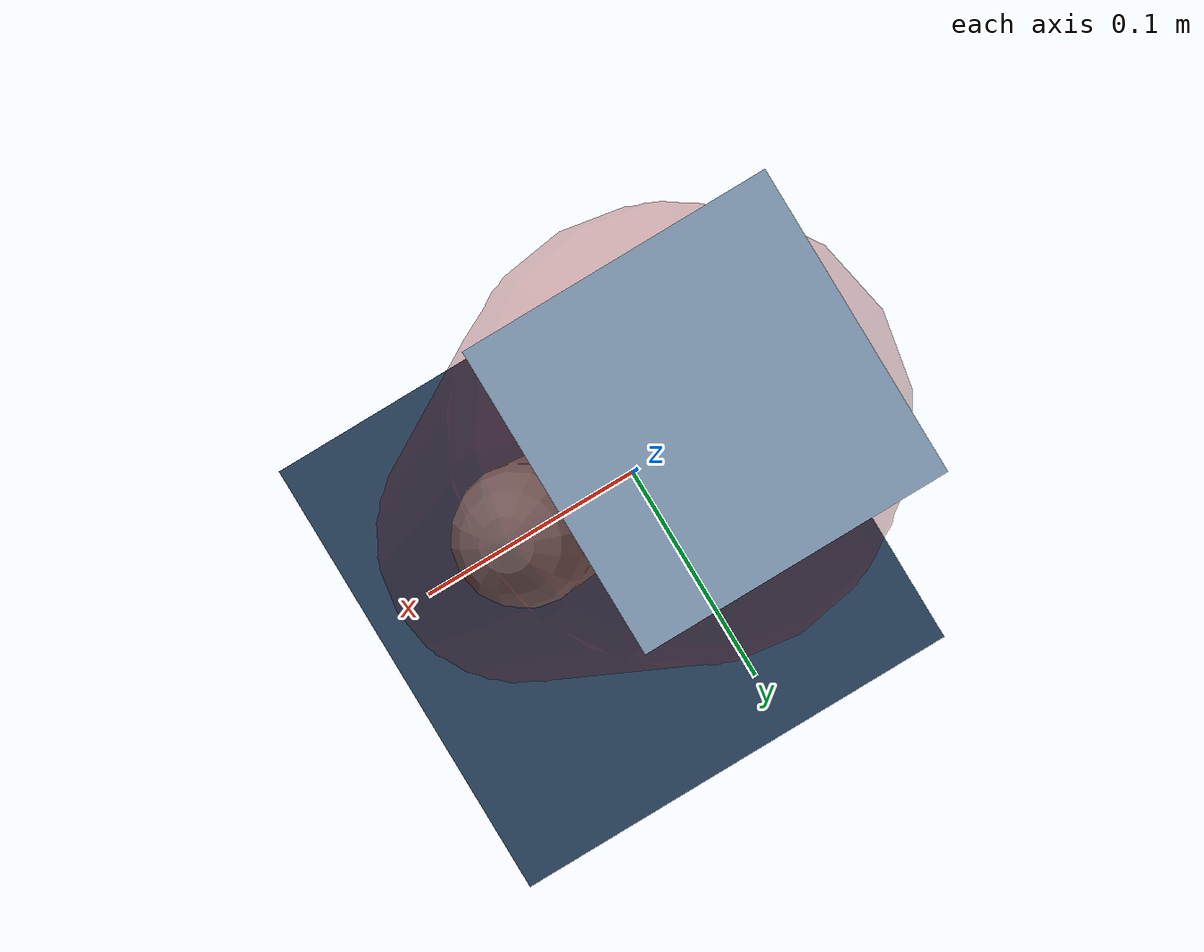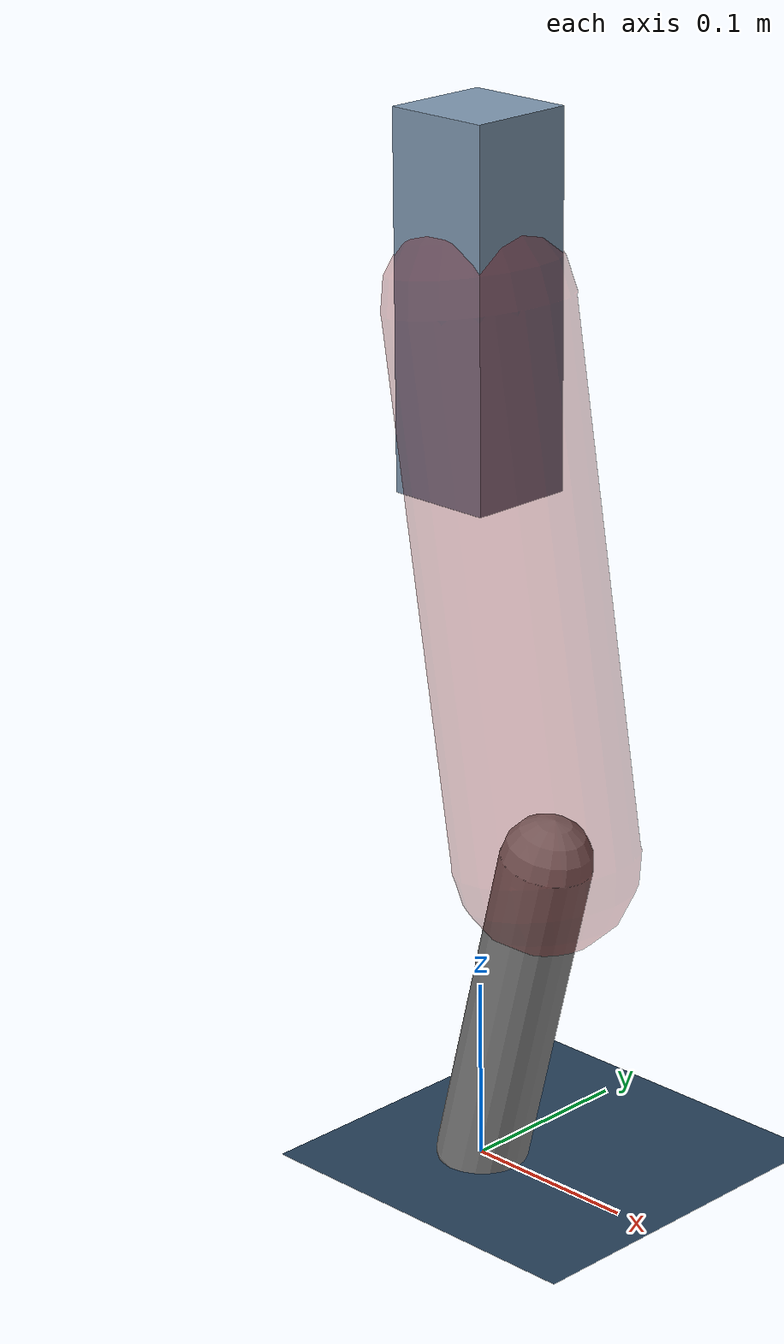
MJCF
<mujoco model="Hopper2D">
	<compiler inertiafromgeom="true" angle="radian" />
	<option timestep="0.001" integrator="implicit" cone="elliptic" solver="Newton" tolerance="1e-10" />

	<default>
		<geom contype="1" conaffinity="1" condim="3" friction="2 0.005 0.0001" solref="0.005 1" />
		<joint limited="true" damping="0.1" />
	</default>

	<asset>
		<texture name="skybox" type="skybox" builtin="gradient" rgb1=".4 .6 .8" rgb2="0 0 0" width="800" height="800" />
		<texture name="grid" type="2d" builtin="checker" rgb1=".1 .2 .3" rgb2=".2 .3 .4" width="300" height="300" mark="edge" markrgb=".2 .3 .4" />
		<material name="ground" texture="grid" texrepeat="1 1" texuniform="true" reflectance="0.1" />
		<material name="leg" rgba="0.5 0.6 0.7 1" />
	</asset>

	<worldbody>

		<geom name="floor" type="plane" size="5 5 0.25" material="ground" />

		<light directional="false" diffuse="0.8 0.8 0.8" specular="0.3 0.3 0.3" pos="0 0 2" dir="0 0 -1" />
		<light mode="targetbodycom" target="base" directional="false" diffuse="0.8 0.8 0.8" specular="0.3 0.3 0.3" pos="0 0 2" dir="0 0 -1" />

		<camera name="fixed" pos="0 -2 1" xyaxes="1 0 0 0 0 1" />
		<camera name="tracking" mode="trackcom" pos="0 -3 1" />

		<body name="root" pos="0 0 0.4787231136227876">
			<joint name="slide_x" type="slide" axis="1 0 0" range="-100 100" />
			<joint name="slide_z" type="slide" axis="0 0 1" range="0 10" />

			<body name="base" pos="0 0 0">
				<geom name="torso" type="box" size="0.03 0.03 0.1" mass="2.3070000000000004" material="leg" />

				<body name="link1" pos="0 0 0" euler="0 1.4071698780385078 0">
					<joint type="hinge" axis="0 -1 0" pos="0 0 0" name="hinge1" limited="true" range="-3.14 3.14" stiffness="0" damping="0.1" />
					<geom name="thigh" type="capsule" fromto="0 0 0 0.29505587545867384 0 0" size="0.05" rgba="0.5 0 0 0.3" mass="0.975445276192552" />

					<body name="link2" pos="0.29505587545867384 0 0" euler="0 0.41442461636266137 0">
						<joint type="hinge" axis="0 -1 0" pos="0 0 0" name="hinge2" limited="true" range="-3.14 3.14" stiffness="0" damping="0.1" />
						<geom name="shank" type="capsule" fromto="0 0 0 0.19366723816411374 0 0" size="0.025" mass="0.395533790531291" />

					</body>
				</body>
			</body>
		</body>
	</worldbody>

	<actuator>
		<motor name="torque1" joint="hinge1" ctrlrange="-68.28666223313017 68.28666223313017" ctrllimited="true" gear="1" />
		<motor name="torque2" joint="hinge2" ctrlrange="-91.94501465423924 91.94501465423924" ctrllimited="true" gear="1" />
	</actuator>
</mujoco>
